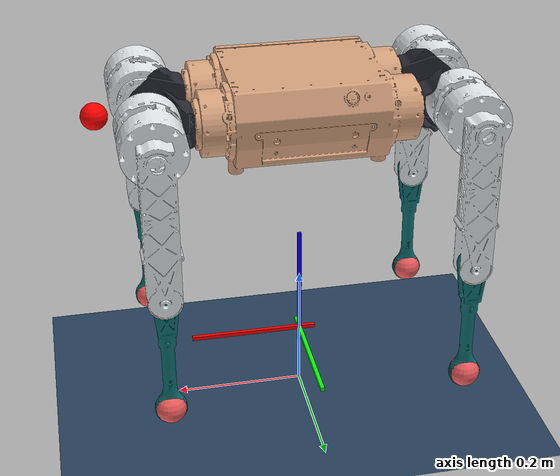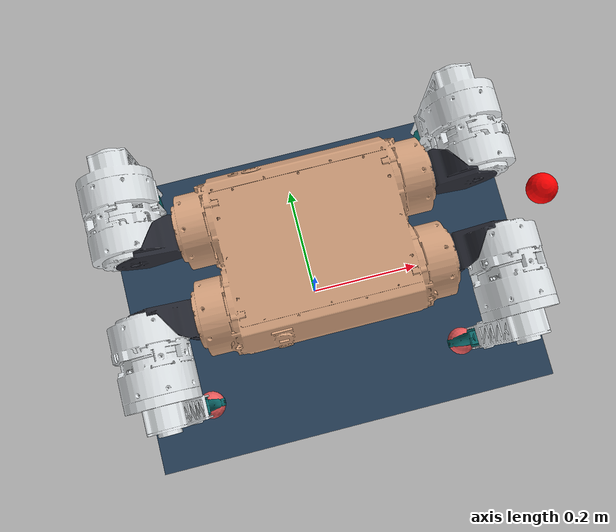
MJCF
<mujoco model="chaojigo scene">
    <include file="chaojigou.xml"/>
    <statistic center="0 0 0.1" extent="0.8"/>
    <visual>
        <headlight diffuse="0.6 0.6 0.6" ambient="0.3 0.3 0.3" specular="0 0 0"/>
        <rgba haze="0.15 0.25 0.35 1"/>
        <global azimuth="-130" elevation="-20"/>
    </visual>
    <asset>
        <texture type="skybox" builtin="gradient" rgb1="0.3 0.5 0.7" rgb2="0 0 0" width="512" height="3072"/>
        <texture type="2d" name="groundplane" builtin="checker" mark="edge" rgb1="0.2 0.3 0.4" rgb2="0.1 0.2 0.3"
                 markrgb="0.8 0.8 0.8" width="300" height="300"/>
        <material name="groundplane" texture="groundplane" texuniform="true" texrepeat="5 5" reflectance="0.2"/>
    </asset>
    <worldbody>
        <light pos="0 0 1.5" dir="0 0 -1" directional="true"/>
        <geom name="floor" size="0 0 0.05" type="plane" material="groundplane"/>

        <body mocap="true" name="esti_indicator" pos="0.0 0.0 0.1">
            <site pos="0 0 0.075" size="0.003 0.003 0.1" type="box" name="mocap_left_site1" rgba="0 0 1 1"/>
            <site pos="0 0.075 0" size="0.003 0.1 0.003" type="box" name="mocap_left_site2" rgba="0 1 0 1"/>
            <site pos="0.075 0 0" size="0.1 0.003 0.003" type="box" name="mocap_left_site3" rgba="1 0 0 1"/>
        </body>

        <body mocap="true" name="start_pos" pos="0.0 0.0 0.1">
            <site pos="0 0 0.075" size="0.003 0.003 0.1" type="box" name="start_pos1" rgba="0 0 1 1"/>
            <site pos="0 0.075 0" size="0.003 0.1 0.003" type="box" name="start_pos2" rgba="0 1 0 1"/>
            <site pos="0.075 0 0" size="0.1 0.003 0.003" type="box" name="start_pos3" rgba="1 0 0 1"/>
        </body>
    </worldbody>
</mujoco>

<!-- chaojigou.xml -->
<!--Please note the -->
<mujoco model="chao_ji_go">
    <compiler angle="radian" meshdir="assets" autolimits="true" eulerseq="ZYX"/>
    <option cone="elliptic" impratio="100" integrator="implicitfast" timestep="0.001"/>

    <visual>
        <global ellipsoidinertia="true"/>
    </visual>
    <!--    mujoco default properties-->
    <default>
        <default class="chaoji_go">
            <geom friction="0.6" margin="0.00001" condim="1"/>
            <!--            armature: inertia of rotors; joint global axis 0.0000097913844*gr^2-->
            <joint axis="0 1 0" damping="0.01" armature="0.01" frictionloss="0.01" actuatorfrcrange="-45 45"/>
            <default class="abad">
                <!--                joint range-->
                <joint pos="0 0 0" axis="1 0 0" range="-1.0472 1.0472"/>
                <!--                control position -->
                <motor ctrlrange="-40 40"/>
            </default>
            <default class="hip">
                <joint range="-3.1415926 3.1415926"/>
                <motor ctrlrange="-40 40"/>
            </default>
            <default class="knee">
                <joint range="-2.565634 0"/>
                <!--                output torque range, knees with larger gear ratio-->
                <motor forcerange="-45 45" ctrlrange="-40 40"/>
            </default>
            <!--            visual mesh for sensors and markers-->
            <default class="visual">
                <geom type="mesh" contype="0" conaffinity="0" group="2"/>
            </default>
            <!--            build collision model-->
            <default class="collision">
                <geom group="3" type="capsule"/>
                <default class="foot">
                    <geom type="sphere" size="0.024" priority="1"  condim="6"
                          friction="0.5 0.02 0.01"
                          pos="0 0 -0.191"/>
                </default>
                <!--                body is based on local frame-->
                <default class="thigh_fl1">
                    <geom size="0.048 0.05685" pos="0 0.05735 0" quat="1 1 0 0" type="cylinder"/>
                </default>
                <default class="thigh_fl2">
                    <geom size="0.025 0.08295" pos="0 0.1282 -0.10795" quat="1 0 0 0" type="capsule"/>
                </default>

                <default class="thigh_fr1">
                    <geom size="0.048 0.05685" pos="0 -0.05735 0" quat="1 1 0 0" type="cylinder"/>
                </default>
                <default class="thigh_fr2">
                    <geom size="0.025 0.08295" pos="0 -0.1282 -0.10795" quat="1 0 0 0" type="capsule"/>
                </default>

                <default class="thigh_rl1">
                    <geom size="0.048 0.05685" pos="0 0.05735 0" quat="1 1 0 0" type="cylinder"/>
                </default>
                <default class="thigh_rl2">
                    <geom size="0.025 0.08295" pos="0 0.1282 -0.10795" quat="1 0 0 0" type="capsule"/>
                </default>
                s
                <default class="thigh_rr1">
                    <geom size="0.048 0.05685" pos="0 -0.05735 0" quat="1 1 0 0" type="cylinder"/>
                </default>
                <default class="thigh_rr2">
                    <geom size="0.025 0.08295" pos="0 -0.1282 -0.10795" quat="1 0 0 0" type="capsule"/>
                </default>

                <default class="calf">
                    <geom size="0.01 0.0855" pos="0 0 -0.0955" quat="1 0 0 0" type="capsule"/>
                </default>
            </default>
        </default>
    </default>

    <asset>
        <material name="chaoji_go" rgba="0.1 0.1 0.1 1"/>
        <mesh class="chaoji_go" file="base_link.STL"/>
        <mesh class="chaoji_go" file="fl_abad_link.STL"/>
        <mesh class="chaoji_go" file="fl_hip_link.STL"/>
        <mesh class="chaoji_go" file="fl_knee_link.STL"/>
        <mesh class="chaoji_go" file="fr_abad_link.STL"/>
        <mesh class="chaoji_go" file="fr_hip_link.STL"/>
        <mesh class="chaoji_go" file="fr_knee_link.STL"/>
        <mesh class="chaoji_go" file="rl_abad_link.STL"/>
        <mesh class="chaoji_go" file="rl_hip_link.STL"/>
        <mesh class="chaoji_go" file="rl_knee_link.STL"/>
        <mesh class="chaoji_go" file="rr_abad_link.STL"/>
        <mesh class="chaoji_go" file="rr_hip_link.STL"/>
        <mesh class="chaoji_go" file="rr_knee_link.STL"/>
    </asset>

    <worldbody>
        <light name="spotlight" mode="targetbodycom" target="base" pos="0 -1 2"/>
        <body name="base" pos="0 0 0.5" childclass="chaoji_go">
            <camera name="tracking" mode="trackcom" pos="0 -1 0.8" xyaxes="1 0 0 0 1 1"/>
            <!--            type of the site is sphere by default-->
            <site name="head" pos="0.3 0 0" rgba="1 0 0 1" size="0.02" group="0"/>
            <inertial pos="0.00137400 0.0101400 -0.004062"
                      mass="7.667" fullinertia="0.02995080 0.08144036 0.100038459 -0.00012919 0.00001841 0.00118417"/>
            <freejoint/>
            <geom class="visual" pos="-0.1641 0.056 0" mesh="base_link" rgba="0.847058824 0.643137255 0.498039216 1"/>
            <!--            main box-->
            <geom class="collision" type="box" size="0.112 0.1035 0.056"/>
            <!--            build four abad motors-->
            <geom class="collision" type="cylinder" pos="0 0.056 0" quat="1 0 1 0" size="0.048 0.16385"/>
            <geom class="collision" type="cylinder" pos="0 -0.056 0" quat="1 0 1 0" size="0.048 0.16385"/>
            <!--            build the pads-->
            <geom class="collision" type="cylinder" pos="0.106 0.06 -0.067" quat="1 0 0 0" size="0.011 0.011"/>
            <geom class="collision" type="cylinder" pos="-0.106 0.06 -0.067" quat="1 0 0 0" size="0.011 0.011"/>
            <geom class="collision" type="cylinder" pos="0.106 -0.06 -0.067" quat="1 0 0 0" size="0.011 0.011"/>
            <geom class="collision" type="cylinder" pos="-0.106 -0.06 -0.067" quat="1 0 0 0" size="0.011 0.011"/>
            <site name="imu" pos="0 0 0"/>

            <body name="fr_abad" pos="0.16411 -0.05597 0" quat="1 0 0 0">
                <inertial pos="0.026072 0.013083 0"
                          mass="0.083818" fullinertia="0.00006522 0.00008854 0.00005319 -0.00001284 0 0"/>
                <joint class="abad" name="fr_abad_joint"/>
                <geom class="visual" mesh="fr_abad_link" quat="1 0 0 0" rgba="0.152941176 0.160784314 0.196078431 1"/>
                <body name="fr_hip" pos="0.06391 0.02201 0" quat="1 0 0 0">
                    <inertial pos="0.00007219 -0.06811710 -0.01555744" mass="1.96404270"
                              fullinertia="0.00894113 0.00659150 0.00454273 0.0000052 -0.00001594 -0.00182123"/>

                    <joint class="hip" name="fr_hip_joint"/>
                    <geom class="thigh_fr1"/>
                    <geom class="thigh_fr2"/>
                    <geom class="visual" mesh="fr_hip_link" rgba="0.905882353 0.925490196 0.937254902 1"/>
                    <body name="fr_knee" pos="0.0 -0.1277 -0.2159">
                        <inertial pos="-0.0 -0.00001342 -0.11387651"
                                  mass="0.13868712" fullinertia="0.00066909 0.00067161 0.00002047 0 0 0.00000008"/>
                        <joint class="knee" name="fr_knee_joint"/>
                        <geom class="visual" mesh="fr_knee_link" rgba="0.058823529 0.443137255 0.450980392 1"/>
                        <geom class="calf"/>
                        <geom name="fr_foot" class="foot"/>
                        <site name="fr_foot_site" rgba="0.941176471 0.364705882 0.368627451 1" pos="0 0 -0.191"
                              type="sphere" size="0.024" group="0"/>
                    </body>
                </body>
            </body>

            <body name="fl_abad" pos="0.16411 0.05597 0" quat="1 0 0 0">
                <inertial pos="0.026072 -0.013083 0"
                          mass="0.083818" fullinertia="0.00006522 0.00008854 0.00005319 0.00001284 0 0"/>
                <joint class="abad" name="fl_abad_joint"/>
                <geom class="visual" mesh="fl_abad_link" quat="1 0 0 0" rgba="0.152941176 0.160784314 0.196078431 1"/>
                <body name="fl_hip" pos="0.06391 -0.02201 0" quat="1 0 0 0">
                    <inertial pos="-0.00007219 0.06811710 -0.01555744" mass="1.96404270"
                              fullinertia="0.00894113 0.00659150 0.00454273 0.0000052 0.00001594 0.00182123"/>
                    <joint class="hip" name="fl_hip_joint"/>
                    <geom class="thigh_fl1"/>
                    <geom class="thigh_fl2"/>
                    <geom class="visual" mesh="fl_hip_link" rgba="0.905882353 0.925490196 0.937254902 1"/>
                    <body name="fl_knee" pos="0.0 0.1277 -0.2159">
                        <inertial pos="-0.0 -0.00001342 -0.11387651"
                                  mass="0.13868712" fullinertia="0.00066909 0.00067161 0.00002047 0 0 0.00000008"/>
                        <joint class="knee" name="fl_knee_joint"/>
                        <geom class="visual" mesh="fl_knee_link" rgba="0.058823529 0.443137255 0.450980392 1"/>
                        <geom class="calf"/>
                        <geom name="fl_foot" class="foot"/>
                        <site name="fl_foot_site" rgba="0.941176471 0.364705882 0.368627451 1" pos="0 0 -0.191"
                              type="sphere" size="0.024" group="0"/>
                    </body>
                </body>
            </body>

            <body name="rr_abad" pos="-0.16411 -0.05597 0" quat="1 0 0 0">
                <inertial pos="-0.026072 0.013083 0"
                          mass="0.083818" fullinertia="0.00006522 0.00008854 0.00005319 0.00001284 0 0"/>
                <joint class="abad" name="rr_abad_joint"/>
                <geom class="visual" mesh="rr_abad_link" quat="1 0 0 0" rgba="0.152941176 0.160784314 0.196078431 1"/>
                <body name="rr_hip" pos="-0.06391 0.02201 0">
                    <inertial pos="0.00007219 -0.06811710 -0.01555744" mass="1.96404270"
                              fullinertia="0.00894113 0.00659150 0.00454273 0.0000052 -0.00001594 -0.00182123"/>
                    <joint class="hip" name="rr_hip_joint"/>
                    <geom class="thigh_rr1"/>
                    <geom class="thigh_rr2"/>
                    <geom class="visual" mesh="rr_hip_link" rgba="0.905882353 0.925490196 0.937254902 1"/>
                    <body name="rr_knee" pos="0.0 -0.1277 -0.2159">
                        <inertial pos="-0.0 -0.00001342 -0.11387651"
                                  mass="0.13868712" fullinertia="0.00066909 0.00067161 0.00002047 0 0 0.00000008"/>
                        <joint class="knee" name="rr_knee_joint"/>
                        <geom class="visual" pos="0 0.3245 0" mesh="rr_knee_link"
                              rgba="0.058823529 0.443137255 0.450980392 1"/>
                        <geom class="calf"/>
                        <geom name="rr_foot" class="foot"/>
                        <site name="rr_foot_site" rgba="0.941176471 0.364705882 0.368627451 1" pos="0 0 -0.191"
                              type="sphere" size="0.024" group="0"/>
                    </body>
                </body>
            </body>

            <body name="rl_abad" pos="-0.16411 0.05597 0" quat="1 0 0 0">
                <inertial pos="-0.026072 -0.013083 0"
                          mass="0.083818" fullinertia="0.00006522 0.00008854 0.00005319 -0.00001284 0 0"/>
                <joint class="abad" name="rl_abad_joint"/>
                <geom class="visual" mesh="rl_abad_link" quat="1 0 0 0" rgba="0.152941176 0.160784314 0.196078431 1"/>

                <body name="rl_hip" pos="-0.06391 -0.02201 0" quat="1 0 0 0">
                    <inertial pos="-0.00007219 0.06811710 -0.01555744" mass="1.96404270"
                              fullinertia="0.00894113 0.00659150 0.00454273 0.0000052 0.00001594 0.00182123"/>
                    <joint class="hip" name="rl_hip_joint"/>
                    <geom class="thigh_rl1"/>
                    <geom class="thigh_rl2"/>
                    <geom class="visual" mesh="rl_hip_link" rgba="0.905882353 0.925490196 0.937254902 1"/>
                    <body name="rl_knee" pos="0.0 0.1277 -0.2159">
                        <inertial pos="-0.0 -0.00001342 -0.11387651"
                                  mass="0.13868712" fullinertia="0.00066909 0.00067161 0.00002047 0 0 0.00000008"/>
                        <joint class="knee" name="rl_knee_joint"/>
                        <geom class="visual" pos="0 -0.3245 0" mesh="rl_knee_link"
                              rgba="0.058823529 0.443137255 0.450980392 1"/>
                        <geom class="calf"/>
                        <geom name="rl_foot" class="foot"/>
                        <site name="rl_foot_site" rgba="0.941176471 0.364705882 0.368627451 1" pos="0 0 -0.191"
                              type="sphere" size="0.024" group="0"/>
                    </body>
                </body>
            </body>
        </body>
    </worldbody>

    <actuator>
        <motor class="abad" name="FR_ABAD" joint="fr_abad_joint"/>
        <motor class="hip" name="FR_HIP" joint="fr_hip_joint"/>
        <motor class="knee" name="FR_KNEE" joint="fr_knee_joint"/>
        <motor class="abad" name="FL_ABAD" joint="fl_abad_joint"/>
        <motor class="hip" name="FL_HIP" joint="fl_hip_joint"/>
        <motor class="knee" name="FL_KNEE" joint="fl_knee_joint"/>
        <motor class="abad" name="RR_ABAD" joint="rr_abad_joint"/>
        <motor class="hip" name="RR_HIP" joint="rr_hip_joint"/>
        <motor class="knee" name="RR_KNEE" joint="rr_knee_joint"/>
        <motor class="abad" name="RL_ABAD" joint="rl_abad_joint"/>
        <motor class="hip" name="RL_HIP" joint="rl_hip_joint"/>
        <motor class="knee" name="RL_KNEE" joint="rl_knee_joint"/>
    </actuator>
    <sensor>
        <gyro name="body_gyro" site="imu"/>
        <framequat name="body_quat" objtype="site" objname="imu"/>
        <accelerometer name="body_acc" site="imu"/>
    </sensor>

    <keyframe>
        <key name="home"
             qpos="0 0 0.1 1 0 0 0 -0.6 1.57086 -2.56 0.6 1.57086 -2.56 -0.6 1.57086 -2.56 0.6 1.57086 -2.56"/>
    </keyframe>
</mujoco>
